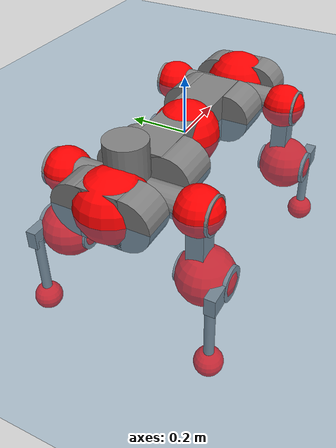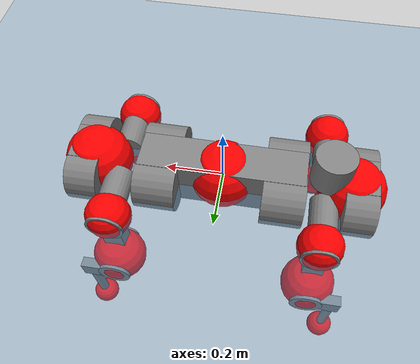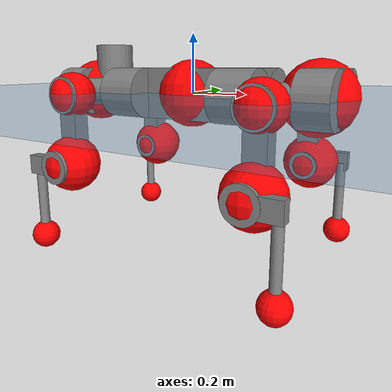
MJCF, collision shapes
<mujoco model="anymal_c">
  <compiler angle="radian" assetdir="assets" balanceinertia="true" inertiafromgeom="false"/>

  <option timestep="0.005" density="1.2" viscosity="2e-05"/>

  <size nkey="1"/>

  <visual>
    <quality shadowsize="8192"/>
    <map shadowclip="0.5"/>
  </visual>

  <default>
    <default class="/">
      <material specular="0" shininess="0.25"/>
      <geom contype="0" conaffinity="0" group="1" solref="-1000 -80"/>
      <site size="0.01 0.005 0.005" group="5"/>
      <general forcelimited="true" forcerange="-80 80" biastype="affine" gainprm="80" biasprm="0 -80 -2"/>
      <default class="anymal_c">
        <joint armature="0.01" damping="0.01" frictionloss="0.1"/>
        <default class="visual">
          <geom type="mesh" group="2"/>
          <default class="visual_zflip"/>
        </default>
        <default class="collision">
          <geom type="cylinder" group="3"/>
          <default class="foot">
            <geom size="0.03 0 0" type="sphere" condim="6" priority="1" friction="0.8 0.02 0.01" solimp="0.015 1 0.03"/>
          </default>
        </default>
      </default>
      <default class="reward_collision_sphere">
        <geom group="5" rgba="1 0 0 1"/>
      </default>
    </default>
  </default>

  <asset>
    <texture type="skybox" colorspace="auto" name="//unnamed_texture_0" builtin="gradient" rgb1="0.95 0.95 0.95" rgb2="0.95 0.95 0.95" width="100" height="600"/>
    <texture type="2d" colorspace="auto" name="texplane" builtin="checker" rgb1="0.345 0.575 0.748" rgb2="0.345 0.575 0.748" markrgb="1 1 1" width="512" height="512"/>
    <texture type="2d" colorspace="linear" name="base" file="base.png"/>
    <texture type="2d" colorspace="linear" name="top_shell" file="top_shell.png"/>
    <texture type="2d" colorspace="linear" name="bottom_shell" file="bottom_shell.png"/>
    <texture type="2d" colorspace="linear" name="remote" file="remote.png"/>
    <texture type="2d" colorspace="linear" name="hatch" file="hatch.png"/>
    <texture type="2d" colorspace="linear" name="handle" file="handle.png"/>
    <texture type="2d" colorspace="linear" name="face" file="face.png"/>
    <texture type="2d" colorspace="linear" name="battery" file="battery.png"/>
    <texture type="2d" colorspace="linear" name="lidar_cage" file="lidar_cage.png"/>
    <texture type="2d" colorspace="linear" name="depth_camera" file="depth_camera.png"/>
    <texture type="2d" colorspace="linear" name="wide_angle_camera" file="wide_angle_camera.png"/>
    <texture type="2d" colorspace="linear" name="lidar" file="lidar.png"/>
    <texture type="2d" colorspace="linear" name="drive" file="drive.png"/>
    <texture type="2d" colorspace="linear" name="hip_l" file="hip_l.png"/>
    <texture type="2d" colorspace="linear" name="shank_l" file="shank_l.png"/>
    <texture type="2d" colorspace="linear" name="foot" file="foot.png"/>
    <texture type="2d" colorspace="linear" name="thigh" file="thigh.png"/>
    <texture type="2d" colorspace="linear" name="shank_r" file="shank_r.png"/>
    <texture type="2d" colorspace="linear" name="hip_r" file="hip_r.png"/>
    <material name="MatPlane" class="/" texture="texplane" texuniform="true" texrepeat="2 2" specular="0.9" shininess="0.5"/>
    <material name="black_plastic" class="/" rgba="0.007 0.007 0.007 1"/>
    <material name="green" class="/" rgba="0.052 0.178 0.033 1"/>
    <material name="red" class="/" rgba="0.178 0.006 0.005 1"/>
    <material name="yellow" class="/" rgba="0.178 0.119 0.006 1"/>
    <material name="lwl" class="/" rgba="0.8 0.8 0.8 1"/>
    <material name="base" class="/" texture="base"/>
    <material name="top_shell" class="/" texture="top_shell"/>
    <material name="bottom_shell" class="/" texture="bottom_shell"/>
    <material name="hip_l" class="/" texture="hip_l"/>
    <material name="thigh" class="/" texture="thigh"/>
    <material name="shank_l" class="/" texture="shank_l"/>
    <material name="foot" class="/" texture="foot"/>
    <material name="hip_r" class="/" texture="hip_r"/>
    <material name="shank" class="/" texture="shank_r"/>
    <material name="hatch" class="/" texture="hatch"/>
    <material name="remote" class="/" texture="remote"/>
    <material name="handle" class="/" texture="handle"/>
    <material name="face" class="/" texture="face"/>
    <material name="depth_camera" class="/" texture="depth_camera"/>
    <material name="wide_angle_camera" class="/" texture="wide_angle_camera"/>
    <material name="battery" class="/" texture="battery"/>
    <material name="lidar_cage" class="/" texture="lidar_cage"/>
    <material name="lidar" class="/" texture="lidar"/>
    <material name="drive" class="/" texture="drive"/>
    <mesh name="base_0" class="/" file="base_0.obj"/>
    <mesh name="base_1" class="/" file="base_1.obj"/>
    <mesh name="base_2" class="/" file="base_2.obj"/>
    <mesh name="base_3" class="/" file="base_3.obj"/>
    <mesh name="base_4" class="/" file="base_4.obj"/>
    <mesh name="base_5" class="/" file="base_5.obj"/>
    <mesh name="top_shell" class="/" file="top_shell.obj"/>
    <mesh name="bottom_shell" class="/" file="bottom_shell.obj"/>
    <mesh name="remote" class="/" file="remote.obj"/>
    <mesh name="handle" class="/" file="handle.obj"/>
    <mesh name="face" class="/" file="face.obj"/>
    <mesh name="wide_angle_camera" class="/" file="wide_angle_camera.obj"/>
    <mesh name="depth_camera" class="/" file="depth_camera.obj"/>
    <mesh name="battery" class="/" file="battery.obj"/>
    <mesh name="lidar_cage" class="/" file="lidar_cage.obj"/>
    <mesh name="lidar" class="/" file="lidar.obj"/>
    <mesh name="drive" class="/" file="drive.obj"/>
    <mesh name="hip_l" class="/" file="hip_l.obj"/>
    <mesh name="thigh" class="/" file="thigh.obj"/>
    <mesh name="shank_l" class="/" file="shank_l.obj"/>
    <mesh name="foot" class="/" file="foot.obj"/>
    <mesh name="hip_r" class="/" file="hip_r.obj"/>
    <mesh name="hatch" class="/" file="hatch.obj"/>
    <mesh name="shank_r" class="/" file="shank_r.obj"/>
  </asset>

  <worldbody>
    <geom name="floor" class="/" size="100 100 0.125" type="plane" group="0" material="MatPlane"/>
    <light name="toplight_shadow" class="/" pos="0 0 5" dir="0.0990148 0.0990148 -0.990148" type="directional" ambient="0.04 0.04 0.04" diffuse="0.55 0.55 0.55" specular="0.12 0.12 0.12"/>
    <light name="toplight_fill" class="/" pos="0 0 5" dir="0.0990148 0.0990148 -0.990148" type="directional" castshadow="false" ambient="0.04 0.04 0.04" diffuse="0.3 0.3 0.3" specular="0.08 0.08 0.08"/>
    <body name="trunk" childclass="anymal_c" pos="-0.00131033 -0.00279842 -0.00193397" quat="0.999999 -0.000126569 -0.000611542 -0.00106287">
      <inertial pos="0.00157745 0.00106184 0.0420792" quat="0.497982 0.493197 0.503699 0.505033" mass="17.845" diaginertia="0.586178 0.938505 0.0942882"/>
      <joint name="//unnamed_joint_0" type="free" armature="0" damping="0" frictionloss="0"/>
      <geom name="//unnamed_geom_1" class="visual" material="green" mesh="base_0"/>
      <geom name="//unnamed_geom_2" class="visual" material="yellow" mesh="base_1"/>
      <geom name="//unnamed_geom_3" class="visual" material="red" mesh="base_2"/>
      <geom name="//unnamed_geom_4" class="visual" material="black_plastic" mesh="base_3"/>
      <geom name="//unnamed_geom_5" class="visual" material="lwl" mesh="base_4"/>
      <geom name="//unnamed_geom_6" class="visual" material="base" mesh="base_5"/>
      <geom name="trunk_1" class="collision" size="0.281246 0.067887 0.0872833" type="box"/>
      <geom name="trunk_2" class="collision" size="0.0872833 0.0703115" pos="0.213843 0.0760166 0" quat="0.707107 0 0.707107 0"/>
      <geom name="trunk_3" class="collision" size="0.0872833 0.0703115" pos="-0.213843 0.0760166 0" quat="0.707107 0 0.707107 0"/>
      <geom name="trunk_4" class="collision" size="0.0872833 0.0703115" pos="0.213843 -0.0760166 0" quat="0.707107 0 0.707107 0"/>
      <geom name="trunk_5" class="collision" size="0.0872833 0.0703115" pos="-0.213843 -0.0760166 0" quat="0.707107 0 0.707107 0"/>
      <geom name="//unnamed_geom_12" class="visual" material="top_shell" mesh="top_shell"/>
      <geom name="//unnamed_geom_13" class="visual" material="bottom_shell" mesh="bottom_shell"/>
      <geom name="//unnamed_geom_14" class="visual" material="remote" mesh="remote"/>
      <geom name="//unnamed_geom_15" class="visual" material="handle" mesh="handle"/>
      <geom name="//unnamed_geom_16" class="visual" pos="0.407531 0 0" quat="1 0 0 0" material="face" mesh="face"/>
      <geom name="trunk_6" class="collision" size="0.0533398 0.067887 0.0872833" pos="0.461606 0 0" type="box"/>
      <geom name="//unnamed_geom_18" class="collision" size="0.0872833 0.0533398" pos="0.461606 0.0760166 0" quat="0.707107 0 0.707107 0"/>
      <geom name="//unnamed_geom_19" class="collision" size="0.0872833 0.0533398" pos="0.461606 -0.0760166 0" quat="0.707107 0 0.707107 0"/>
      <geom name="//unnamed_geom_20" class="visual" pos="0.453882 0 -0.023451" quat="0.965926 0 0.258819 0" material="depth_camera" mesh="depth_camera"/>
      <geom name="//unnamed_geom_21" class="visual" pos="0.504374 0 0.0125794" material="wide_angle_camera" mesh="wide_angle_camera"/>
      <geom name="//unnamed_geom_22" class="visual_zflip" pos="-0.407531 0 0" quat="0 0 0 1" material="face" mesh="face"/>
      <geom name="trunk_7" class="collision" size="0.0533398 0.067887 0.0872833" pos="-0.461606 0 0" quat="0 0 0 1" type="box"/>
      <geom name="//unnamed_geom_24" class="collision" size="0.0872833 0.0533398" pos="-0.461606 -0.0760166 0" quat="0 -0.707107 0 0.707107"/>
      <geom name="//unnamed_geom_25" class="collision" size="0.0872833 0.0533398" pos="-0.461606 0.0760166 0" quat="0 -0.707107 0 0.707107"/>
      <geom name="//unnamed_geom_26" class="visual" pos="-0.453882 0 -0.023451" quat="0 -0.258819 0 0.965926" material="depth_camera" mesh="depth_camera"/>
      <geom name="//unnamed_geom_27" class="visual_zflip" pos="-0.504374 0 0.0125794" quat="0 0 0 1" material="wide_angle_camera" mesh="wide_angle_camera"/>
      <geom name="//unnamed_geom_28" class="visual" material="battery" mesh="battery"/>
      <geom name="//unnamed_geom_29" class="visual" pos="0 0.0843744 0.0254968" quat="0.683013 -0.183013 0.183013 0.683013" material="depth_camera" mesh="depth_camera"/>
      <geom name="//unnamed_geom_30" class="visual" pos="0 -0.0843744 0.0254968" quat="0.683013 0.183013 0.183013 -0.683013" material="depth_camera" mesh="depth_camera"/>
      <geom name="//unnamed_geom_31" class="visual" pos="-0.35788 0 0.0617624" quat="1 0 0 0" material="lidar_cage" mesh="lidar_cage"/>
      <geom name="trunk_8" class="collision" size="0.067887 0.0581888" pos="-0.35788 0 0.112181"/>
      <geom name="//unnamed_geom_33" class="visual" pos="-0.35788 4.03736e-05 0.119491" quat="0.707107 0 0 -0.707107" material="lidar" mesh="lidar"/>
      <geom name="//unnamed_geom_34" class="visual" pos="0.294857 0.112852 4.23741e-09" quat="0.258819 0.965926 0 0" material="drive" mesh="drive"/>
      <geom name="//unnamed_geom_35" class="visual" pos="0.294857 -0.112852 -4.23741e-09" quat="0.258819 -0.965926 0 0" material="drive" mesh="drive"/>
      <geom name="//unnamed_geom_36" class="visual" pos="-0.294857 0.112852 -4.23741e-09" quat="0 0 0.965926 -0.258819" material="drive" mesh="drive"/>
      <geom name="//unnamed_geom_37" class="visual" pos="-0.294857 -0.112852 4.23741e-09" quat="0 0 -0.965926 -0.258819" material="drive" mesh="drive"/>
      <geom name="//unnamed_geom_38" class="visual" pos="0.11405 0 0.0613423" quat="1 0 0 0" material="hatch" mesh="hatch"/>
      <geom name="//unnamed_geom_39" class="reward_collision_sphere" size="0.116378"/>
      <geom name="//unnamed_geom_40" class="reward_collision_sphere" size="0.116378" pos="0.442434 0 0"/>
      <geom name="//unnamed_geom_41" class="reward_collision_sphere" size="0.116378" pos="-0.442434 0 0"/>
      <site name="imu" pos="0.242639 0.0176339 0.0347742" size="0.00969814"/>
      <camera name="track" pos="0 -2.1719 0" quat="0.707107 0.707107 0 0" mode="trackcom"/>
      <camera name="ego_camera" pos="0.442434 0 -0.0336122" quat="-0.5 -0.5 0.5 0.5"/>
      <body name="LF_HIP" pos="0.292841 0.110658 0.00248801" quat="0.258956 0.965889 0.000181813 -0.00046283">
        <inertial pos="0.0549356 -0.0188897 -0.00944673" quat="-0.132338 0.709067 -0.135242 0.67928" mass="2.6295" diaginertia="0.00555909 0.00746773 0.00146287"/>
        <joint name="LF_HAA" pos="0 0 0" axis="0.999998 -0.001357 0.00164665" range="-0.699713 0.446971" armature="0.0109819" damping="0" frictionloss="0.107325"/>
        <geom name="//unnamed_geom_42" class="visual" pos="0 0.000249268 -4.0942e-05" quat="0.258819 -0.965926 0 0" material="hip_l" mesh="hip_l"/>
        <geom name="//unnamed_geom_43" class="visual" pos="0.0588928 -0.072627 -0.0401143" quat="0.183013 -0.683013 0.683013 0.183013" material="drive" mesh="drive"/>
        <geom name="//unnamed_geom_44" class="collision" size="0.0484907 0.067887" pos="0.0588928 -0.0129878 -0.00580231" quat="-0.353553 -0.612372 0.612372 -0.353553"/>
        <body name="LF_THIGH" pos="0.0583997 -0.0798241 -0.0338188" quat="0.182977 -0.682806 0.683099 0.183499">
          <inertial pos="0.0316963 -0.000520122 -0.204464" quat="0.993522 -0.00157651 -0.0772665 0.0833104" mass="2.79776" diaginertia="0.0283278 0.0458629 0.00172283"/>
          <joint name="LF_HFE" pos="0 0 0" axis="0.999927 -0.0103136 0.00632434" stiffness="0.000490094" range="-3.19111 3.1916" armature="0.0110299" damping="0.00148362" frictionloss="0.109338"/>
          <geom name="//unnamed_geom_45" class="visual" pos="-0.00204462 -3.22184e-06 0" quat="0.707107 0 0 -0.707107" material="thigh" mesh="thigh"/>
          <geom name="//unnamed_geom_46" class="collision" size="0.0630379 0.0387926" pos="0.0393274 0 0" quat="0.5 0.5 -0.5 -0.5"/>
          <geom name="//unnamed_geom_47" class="collision" size="0.036368 0.0290944 0.137048" pos="0.0294956 0 -0.118747" quat="0.707107 0 0 -0.707107" type="box"/>
          <geom name="//unnamed_geom_48" class="visual" pos="0.0986135 0 -0.239487" quat="1 0 0 0" material="drive" mesh="drive"/>
          <geom name="//unnamed_geom_49" class="collision" size="0.0484907 0.067887" pos="0.0297905 0 -0.239487" quat="0.707107 0 0.707107 0"/>
          <geom name="//unnamed_geom_50" class="reward_collision_sphere" size="0.0775851" pos="0.0245796 0 0"/>
          <body name="LF_SHANK" pos="0.0999355 -0.000810669 -0.240158" quat="0.999999 -0.00116999 -0.000691849 0.000172711">
            <inertial pos="0.00814178 -0.0638464 -0.0705115" quat="0.993358 -0.112211 0.00838284 -0.0240472" mass="0.544115" diaginertia="0.00919703 0.0144341 0.000453309"/>
            <joint name="LF_KFE" pos="0 0 0" axis="0.999991 0.00289081 0.0030947" range="-3.11923 3.09359" armature="0.00826659" damping="0.0107938" frictionloss="0.10062"/>
            <geom name="//unnamed_geom_51" class="visual" pos="-0.000666706 -0.00355491 0" quat="0.707107 0 0 -0.707107" material="shank_l" mesh="shank_l"/>
            <geom name="LF_kfe_act" class="collision" size="0.0581888 0.0193963" pos="0.0196637 0 0" quat="0.5 0.5 -0.5 -0.5"/>
            <geom name="//unnamed_geom_53" class="collision" size="0.0557633 0.0327312 0.0184265" pos="0.0196637 -0.0624411 0" quat="0.5 0.5 -0.5 -0.5" type="box"/>
            <geom name="//unnamed_geom_54" class="visual" pos="0.0128307 -0.096655 -0.283998" quat="0.382683 0 0 -0.92388" material="foot" mesh="foot"/>
            <geom name="LF_calf" class="collision" size="0.0169717 0.136988" pos="0.0128306 -0.0955094 -0.141999" quat="0.707107 0 0 -0.707107"/>
            <geom name="LF_foot" class="foot" size="0.034037" pos="0.0128306 -0.0955094 -0.265091" quat="0.707107 0 0 -0.707107"/>
            <geom name="//unnamed_geom_57" class="reward_collision_sphere" size="0.0969814" pos="-0.0491593 0 0"/>
            <geom name="//unnamed_geom_58" class="reward_collision_sphere" size="0.0484907" pos="0.0128306 -0.0955094 -0.265091"/>
            <site name="LF_foot" class="foot" pos="0.0128306 -0.0955094 -0.265091" quat="0.707107 0 0 -0.707107" size="0.00969814"/>
          </body>
        </body>
      </body>
      <body name="RF_HIP" pos="0.29498 -0.111339 0.000118983" quat="0.258393 -0.966039 -0.000884043 0.000328202">
        <inertial pos="0.0583336 0.0181976 -0.00682975" quat="0.133675 0.680844 0.124968 0.709201" mass="2.62716" diaginertia="0.00561311 0.00767726 0.00137636"/>
        <joint name="RF_HAA" pos="0 0 0" axis="0.999994 -0.00320613 0.00154778" range="-0.438141 0.719848" armature="0.00924686" damping="0.010604" frictionloss="0.102802"/>
        <geom name="//unnamed_geom_59" class="visual" pos="0 -0.000249266 -4.09419e-05" quat="0.258819 0.965926 0 0" material="hip_r" mesh="hip_r"/>
        <geom name="//unnamed_geom_60" class="visual" pos="0.0588928 0.072627 -0.0401143" quat="0.183013 0.683013 0.683013 -0.183013" material="drive" mesh="drive"/>
        <geom name="//unnamed_geom_61" class="collision" size="0.0484907 0.067887" pos="0.0588928 0.0129878 -0.00580231" quat="-0.353553 0.612372 0.612372 0.353553"/>
        <body name="RF_THIGH" pos="0.0581521 0.0782126 -0.033457" quat="0.183748 0.68306 0.682759 -0.183046">
          <inertial pos="0.0276085 -0.00100567 -0.207061" quat="0.992925 -0.00690351 -0.0819795 0.0856226" mass="2.7172" diaginertia="0.0273471 0.0429423 0.00166204"/>
          <joint name="RF_HFE" pos="0 0 0" axis="0.999978 0.00459614 -0.00476656" stiffness="0.00459133" range="-3.16639 3.10526" armature="0.00953391" damping="0.0130669" frictionloss="0.107539"/>
          <geom name="//unnamed_geom_62" class="visual" pos="-0.00204462 -3.22184e-06 0" quat="0.707107 0 0 -0.707107" material="thigh" mesh="thigh"/>
          <geom name="//unnamed_geom_63" class="collision" size="0.0630379 0.0387926" pos="0.0393274 0 0" quat="0.5 0.5 0.5 0.5"/>
          <geom name="//unnamed_geom_64" class="collision" size="0.036368 0.0290944 0.137048" pos="0.0294956 0 -0.118747" quat="0.707107 0 0 0.707107" type="box"/>
          <geom name="//unnamed_geom_65" class="visual" pos="0.0986135 0 -0.239487" quat="1 0 0 0" material="drive" mesh="drive"/>
          <geom name="//unnamed_geom_66" class="collision" size="0.0484907 0.067887" pos="0.0297905 0 -0.239487" quat="0.707107 0 0.707107 0"/>
          <geom name="//unnamed_geom_67" class="reward_collision_sphere" size="0.0775851" pos="0.0245796 0 0"/>
          <body name="RF_SHANK" pos="0.101491 4.01725e-05 -0.239676" quat="1 0.000200266 0.000253425 -7.82425e-05">
            <inertial pos="0.00828361 0.0666444 -0.0684196" quat="0.992904 0.116575 -0.00387581 0.0231792" mass="0.558001" diaginertia="0.00988659 0.0138753 0.000478401"/>
            <joint name="RF_KFE" pos="0 0 0" axis="0.999939 -0.0107793 0.00226249" range="-3.13642 3.15516" armature="0.00922808" damping="0.0224268" frictionloss="0.0997767"/>
            <geom name="//unnamed_geom_68" class="visual" pos="-0.000666702 0.0035549 0" quat="0.707107 0 0 0.707107" material="shank" mesh="shank_r"/>
            <geom name="RF_kfe_act" class="collision" size="0.0581888 0.0193963" pos="0.0196637 0 0" quat="0.5 0.5 0.5 0.5"/>
            <geom name="//unnamed_geom_70" class="collision" size="0.0557633 0.0327312 0.0184265" pos="0.0196637 0.0624411 0" quat="0.5 0.5 0.5 0.5" type="box"/>
            <geom name="//unnamed_geom_71" class="visual" pos="0.0128304 0.096655 -0.283998" quat="0.382683 0 0 0.92388" material="foot" mesh="foot"/>
            <geom name="RF_calf" class="collision" size="0.0169717 0.136988" pos="0.0128306 0.0955094 -0.141999" quat="0.707107 0 0 0.707107"/>
            <geom name="RF_foot" class="foot" size="0.0273456" pos="0.0128306 0.0955094 -0.265091" quat="0.707107 0 0 0.707107"/>
            <geom name="//unnamed_geom_74" class="reward_collision_sphere" size="0.0969814" pos="-0.0491593 0 0"/>
            <geom name="//unnamed_geom_75" class="reward_collision_sphere" size="0.0484907" pos="0.0128306 0.0955094 -0.265091"/>
            <site name="RF_foot" class="foot" pos="0.0128306 0.0955094 -0.265091" quat="0.707107 0 0 0.707107" size="0.00969814"/>
          </body>
        </body>
      </body>
      <body name="LH_HIP" pos="-0.293724 0.113402 0.00295618" quat="5.26749e-05 6.60917e-05 0.965932 -0.258795">
        <inertial pos="0.0570878 0.0161593 -0.00806395" quat="0.134988 0.678868 0.127869 0.710328" mass="2.51769" diaginertia="0.00533703 0.00760526 0.00135327"/>
        <joint name="LH_HAA" pos="0 0 0" axis="0.999997 -0.000150522 -0.00238103" stiffness="0.00859068" range="-0.491057 0.707598" armature="0.00982903" damping="0.00788976" frictionloss="0.106146"/>
        <geom name="//unnamed_geom_76" class="visual" pos="0 -0.000249266 -4.09419e-05" quat="-0.258819 -0.965926 0 0" material="hip_r" mesh="hip_r"/>
        <geom name="//unnamed_geom_77" class="visual" pos="0.0588928 0.072627 -0.0401143" quat="0.183013 0.683013 0.683013 -0.183013" material="drive" mesh="drive"/>
        <geom name="//unnamed_geom_78" class="collision" size="0.0484907 0.067887" pos="0.0588928 0.0129878 -0.00580231" quat="-0.353553 0.612372 0.612372 0.353553"/>
        <body name="LH_THIGH" pos="0.0569063 0.0813318 -0.0326864" quat="0.182461 0.682816 0.683388 -0.182896">
          <inertial pos="0.030359 0.00020445 -0.205876" quat="0.991616 -0.000597493 -0.0862874 0.0961814" mass="2.72127" diaginertia="0.0281407 0.0437186 0.00178593"/>
          <joint name="LH_HFE" pos="0 0 0" axis="0.999955 0.00142591 -0.0094077" stiffness="0.000457548" range="-3.12987 3.13604" armature="0.00846038" damping="0.00124693" frictionloss="0.0892321"/>
          <geom name="//unnamed_geom_79" class="visual" pos="-0.00204462 -3.22184e-06 0" quat="0.707107 0 0 -0.707107" material="thigh" mesh="thigh"/>
          <geom name="//unnamed_geom_80" class="collision" size="0.0630379 0.0387926" pos="0.0393274 0 0" quat="0.5 0.5 -0.5 -0.5"/>
          <geom name="//unnamed_geom_81" class="collision" size="0.036368 0.0290944 0.137048" pos="0.0294956 0 -0.118747" quat="0.707107 0 0 -0.707107" type="box"/>
          <geom name="//unnamed_geom_82" class="visual" pos="0.0986135 0 -0.239487" quat="1 0 0 0" material="drive" mesh="drive"/>
          <geom name="//unnamed_geom_83" class="collision" size="0.0484907 0.067887" pos="0.0297905 0 -0.239487" quat="0.707107 0 0.707107 0"/>
          <geom name="//unnamed_geom_84" class="reward_collision_sphere" size="0.0775851" pos="0.0245796 0 0"/>
          <body name="LH_SHANK" pos="0.100218 -0.00120486 -0.237695" quat="1 0.000115921 -2.09969e-05 -1.6841e-05">
            <inertial pos="0.00532949 0.066376 -0.0649557" quat="0.992927 0.115963 -0.00106258 0.0254512" mass="0.540085" diaginertia="0.00933339 0.0139316 0.000477139"/>
            <joint name="LH_KFE" pos="0 0 0" axis="0.999997 6.11408e-05 -0.00245106" stiffness="0.00123537" range="-3.16044 3.14029" armature="0.00872736" damping="0.00121197" frictionloss="0.0985708"/>
            <geom name="//unnamed_geom_85" class="visual" pos="-0.000666702 0.0035549 0" quat="-0.707107 0 0 -0.707107" material="shank" mesh="shank_r"/>
            <geom name="LH_kfe_act" class="collision" size="0.0581888 0.0193963" pos="0.0196637 0 0" quat="0.5 0.5 -0.5 -0.5"/>
            <geom name="//unnamed_geom_87" class="collision" size="0.0557633 0.0327312 0.0184265" pos="0.0196637 0.0624411 0" quat="0.5 0.5 -0.5 -0.5" type="box"/>
            <geom name="//unnamed_geom_88" class="visual" pos="0.0128304 0.096655 -0.283998" quat="-0.382683 0 0 -0.92388" material="foot" mesh="foot"/>
            <geom name="LH_calf" class="collision" size="0.0169717 0.136988" pos="0.0128306 0.0955094 -0.141999" quat="0.707107 0 0 -0.707107"/>
            <geom name="LH_foot" class="foot" size="0.0328497" pos="0.0128306 0.0955094 -0.265091" quat="0.707107 0 0 -0.707107"/>
            <geom name="//unnamed_geom_91" class="reward_collision_sphere" size="0.0969814" pos="-0.0491593 0 0"/>
            <geom name="//unnamed_geom_92" class="reward_collision_sphere" size="0.0484907" pos="0.0128306 0.0955094 -0.265091"/>
            <site name="LH_foot" class="foot" pos="0.0128306 0.0955094 -0.265091" quat="0.707107 0 0 -0.707107" size="0.00969814"/>
          </body>
        </body>
      </body>
      <body name="RH_HIP" pos="-0.293378 -0.113955 0.00253333" quat="0.000168546 0.00124413 -0.965681 -0.259726">
        <inertial pos="0.0555513 -0.0141454 -0.00702989" quat="-0.120297 0.70973 -0.140266 0.679807" mass="2.53883" diaginertia="0.00557409 0.0077 0.00134577"/>
        <joint name="RH_HAA" pos="0 0 0" axis="0.999994 -0.00338466 0.000523727" stiffness="0.00363513" range="-0.733955 0.499269" armature="0.0104617" damping="0.0114329" frictionloss="0.0866333"/>
        <geom name="//unnamed_geom_93" class="visual" pos="0 0.000249268 -4.0942e-05" quat="-0.258819 0.965926 0 0" material="hip_l" mesh="hip_l"/>
        <geom name="//unnamed_geom_94" class="visual" pos="0.0588928 -0.072627 -0.0401143" quat="-0.183013 0.683013 -0.683013 -0.183013" material="drive" mesh="drive"/>
        <geom name="//unnamed_geom_95" class="collision" size="0.0484907 0.067887" pos="0.0588928 -0.0129878 -0.00580231" quat="0.353553 0.612372 -0.612372 0.353553"/>
        <body name="RH_THIGH" pos="0.0572533 -0.078434 -0.0373295" quat="-0.183997 0.683299 -0.682563 -0.182636">
          <inertial pos="0.0309204 -0.00267344 -0.207222" quat="0.993298 -0.00373045 -0.0812649 0.0821052" mass="2.6528" diaginertia="0.0264481 0.0438498 0.00167434"/>
          <joint name="RH_HFE" pos="0 0 0" axis="0.999991 -0.000646769 0.0041156" range="-3.17677 3.19998" armature="0.0109643" damping="0.00792842" frictionloss="0.0935096"/>
          <geom name="//unnamed_geom_96" class="visual" pos="-0.00204462 -3.22184e-06 0" quat="0.707107 0 0 -0.707107" material="thigh" mesh="thigh"/>
          <geom name="//unnamed_geom_97" class="collision" size="0.0630379 0.0387926" pos="0.0393274 0 0" quat="0.5 0.5 0.5 0.5"/>
          <geom name="//unnamed_geom_98" class="collision" size="0.036368 0.0290944 0.137048" pos="0.0294956 0 -0.118747" quat="0.707107 0 0 0.707107" type="box"/>
          <geom name="//unnamed_geom_99" class="visual" pos="0.0986135 0 -0.239487" quat="1 0 0 0" material="drive" mesh="drive"/>
          <geom name="//unnamed_geom_100" class="collision" size="0.0484907 0.067887" pos="0.0297905 0 -0.239487" quat="0.707107 0 0.707107 0"/>
          <geom name="//unnamed_geom_101" class="reward_collision_sphere" size="0.0775851" pos="0.0245796 0 0"/>
          <body name="RH_SHANK" pos="0.0980706 0.00317484 -0.240273" quat="1 -8.13088e-06 -4.16903e-05 -3.73952e-05">
            <inertial pos="0.00594851 -0.0662625 -0.0651461" quat="0.99396 -0.106777 -0.00401743 -0.0250279" mass="0.534526" diaginertia="0.00952091 0.013286 0.000478825"/>
            <joint name="RH_KFE" pos="0 0 0" axis="0.999981 0.00011512 -0.0061167" stiffness="0.000939521" range="-3.0762 3.1456" armature="0.0083056" damping="0.00505234" frictionloss="0.101195"/>
            <geom name="//unnamed_geom_102" class="visual" pos="-0.000666706 -0.00355491 0" quat="0.707107 0 0 -0.707107" material="shank_l" mesh="shank_l"/>
            <geom name="RH_kfe_act" class="collision" size="0.0581888 0.0193963" pos="0.0196637 0 0" quat="0.5 0.5 0.5 0.5"/>
            <geom name="//unnamed_geom_104" class="collision" size="0.0557633 0.0327312 0.0184265" pos="0.0196637 -0.0624411 0" quat="0.5 0.5 0.5 0.5" type="box"/>
            <geom name="//unnamed_geom_105" class="visual" pos="0.0128307 -0.096655 -0.283998" quat="0.382683 0 0 -0.92388" material="foot" mesh="foot"/>
            <geom name="RH_calf" class="collision" size="0.0169717 0.136988" pos="0.0128306 -0.0955094 -0.141999" quat="0.707107 0 0 0.707107"/>
            <geom name="RH_foot" class="foot" size="0.0255778" pos="0.0128306 -0.0955094 -0.265091" quat="0.707107 0 0 0.707107"/>
            <geom name="//unnamed_geom_108" class="reward_collision_sphere" size="0.0969814" pos="-0.0491593 0 0"/>
            <geom name="//unnamed_geom_109" class="reward_collision_sphere" size="0.0484907" pos="0.0128306 -0.0955094 -0.265091"/>
            <site name="RH_foot" class="foot" pos="0.0128306 -0.0955094 -0.265091" quat="0.707107 0 0 0.707107" size="0.00969814"/>
          </body>
        </body>
      </body>
    </body>
  </worldbody>

  <contact>
    <pair class="/" geom1="floor" geom2="LF_foot" name="//unnamed_contact_0"/>
    <pair class="/" geom1="floor" geom2="RF_foot" name="//unnamed_contact_1"/>
    <pair class="/" geom1="floor" geom2="LH_foot" name="//unnamed_contact_2"/>
    <pair class="/" geom1="floor" geom2="RH_foot" name="//unnamed_contact_3"/>
  </contact>

  <actuator>
    <general name="LF_HAA" class="/" joint="LF_HAA" forcerange="-78.6199 78.6199" gainprm="78.4997" biasprm="0 -78.4997 -1.97867"/>
    <general name="LF_HFE" class="/" joint="LF_HFE" forcerange="-70.2597 70.2597" gainprm="78.4997" biasprm="0 -78.4997 -1.97867"/>
    <general name="LF_KFE" class="/" joint="LF_KFE" forcerange="-77.5607 77.5607" gainprm="78.4997" biasprm="0 -78.4997 -1.97867"/>
    <general name="RF_HAA" class="/" joint="RF_HAA" forcerange="-79.8001 79.8001" gainprm="78.4997" biasprm="0 -78.4997 -1.97867"/>
    <general name="RF_HFE" class="/" joint="RF_HFE" forcerange="-80.4323 80.4323" gainprm="78.4997" biasprm="0 -78.4997 -1.97867"/>
    <general name="RF_KFE" class="/" joint="RF_KFE" forcerange="-69.8008 69.8008" gainprm="78.4997" biasprm="0 -78.4997 -1.97867"/>
    <general name="LH_HAA" class="/" joint="LH_HAA" forcerange="-80.5213 80.5213" gainprm="78.4997" biasprm="0 -78.4997 -1.97867"/>
    <general name="LH_HFE" class="/" joint="LH_HFE" forcerange="-80.4769 80.4769" gainprm="78.4997" biasprm="0 -78.4997 -1.97867"/>
    <general name="LH_KFE" class="/" joint="LH_KFE" forcerange="-74.8282 74.8282" gainprm="78.4997" biasprm="0 -78.4997 -1.97867"/>
    <general name="RH_HAA" class="/" joint="RH_HAA" forcerange="-75.8071 75.8071" gainprm="78.4997" biasprm="0 -78.4997 -1.97867"/>
    <general name="RH_HFE" class="/" joint="RH_HFE" forcerange="-74.8135 74.8135" gainprm="78.4997" biasprm="0 -78.4997 -1.97867"/>
    <general name="RH_KFE" class="/" joint="RH_KFE" forcerange="-82.9183 82.9183" gainprm="78.4997" biasprm="0 -78.4997 -1.97867"/>
  </actuator>

  <sensor>
    <gyro site="imu" name="imu_angular_velocity"/>
    <velocimeter site="imu" name="imu_linear_velocity"/>
    <framelinvel objtype="site" objname="LF_foot" name="LF_foot_global_linear_velocity"/>
    <framelinvel objtype="site" objname="RF_foot" name="RF_foot_global_linear_velocity"/>
    <framelinvel objtype="site" objname="LH_foot" name="LH_foot_global_linear_velocity"/>
    <framelinvel objtype="site" objname="RH_foot" name="RH_foot_global_linear_velocity"/>
  </sensor>

  <keyframe>
    <key name="home" qpos="0 0 0.55 1 0 0 0 0 0.4 -0.8 0 -0.4 0.8 0 -0.4 0.8 0 0.4 -0.8"/>
  </keyframe>
</mujoco>
